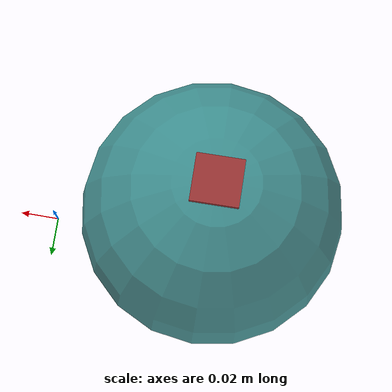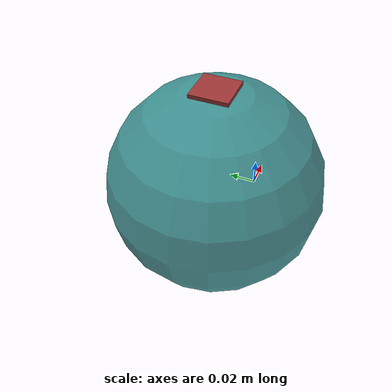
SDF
<?xml version="1.0"?>

<sdf version="1.7">
  <model name="sphere_r0.06m">

    <joint name="world_sphere_offset" type="fixed">
      <child>sphere_root</child>
      <parent>world</parent>
      <axis>
        <limit>
          <effort>0</effort>
        </limit>
      </axis>
    </joint>

    <link name="sphere_root">
      <pose relative_to="__model__">-0.081 0.001 0.073 0 0 0</pose>
    </link>

    <joint name="sphere_root_joint" type="revolute">
        <child>sphere_link</child>
        <parent>sphere_root</parent>
        <axis>
          <xyz>0 0 1</xyz>
          <limit>
            <effort>0</effort>
          </limit>
        </axis>
    </joint>

    <link name="sphere_link">
      <pose relative_to="sphere_root">0 0 0 0 0 0</pose>
      <inertial>
        <mass>1.0</mass>
        <inertia>
          <ixx>0.001</ixx>
          <ixy>0</ixy>
          <ixz>0</ixz>
          <iyy>0.001</iyy>
          <iyz>0</iyz>
          <izz>0.001</izz>
        </inertia>
      </inertial>

      <visual name="visual">
        <geometry>
          <sphere>
            <radius>0.06</radius>
          </sphere>
        </geometry>
        <material>
          <diffuse>0.1 0.5 0.5 0.8</diffuse>
        </material>
      </visual>

      <visual name="visual_2">
        <pose> 0 0 0.06 0 0 0 </pose>
        <geometry>
          <box>
           <size>0.02 0.02 0.002 </size>
          </box>
        </geometry>
        <material>
          <diffuse>0.6 0.2 0.2 0.9</diffuse>
        </material>
      </visual>

      <collision name="collision">
        <geometry>
          <sphere>
            <radius>0.06</radius>
          </sphere>
        </geometry>
        <surface>
          <friction>
            <ode>
              <mu>1.0</mu>
              <mu2>1.0</mu2>
            </ode>
          </friction>
        </surface>
      </collision>
    </link>

  </model>
</sdf>
